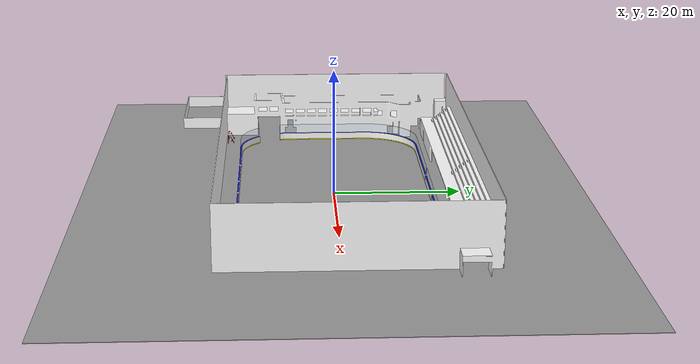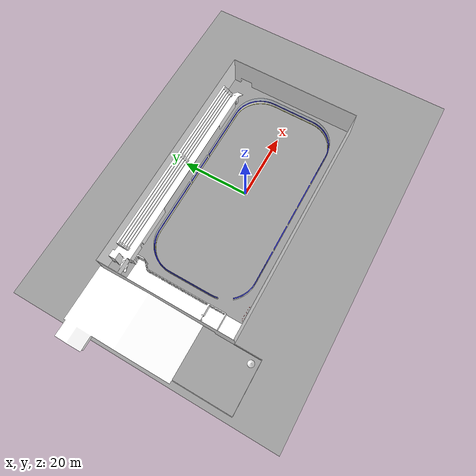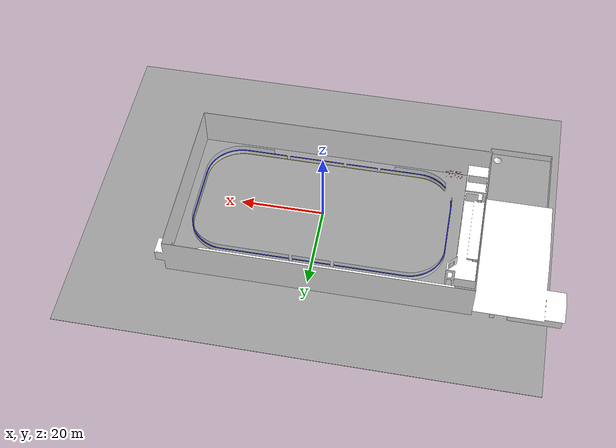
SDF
<?xml version="1.0" ?>
<sdf version="1.8">
  <world name="ice_rink">

    <scene>
      <grid>false</grid>
    </scene>

    <physics name="1ms" type="ignored">
      <max_step_size>0.01</max_step_size>
      <real_time_factor>1.0</real_time_factor>
    </physics>

    <plugin
      filename="gz-sim-physics-system"
      name="gz::sim::systems::Physics">
    </plugin>
    <plugin
      filename="gz-sim-user-commands-system"
      name="gz::sim::systems::UserCommands">
    </plugin>
    <plugin
      filename="gz-sim-scene-broadcaster-system"
      name="gz::sim::systems::SceneBroadcaster">
    </plugin>

    <plugin filename="libgz-sim-imu-system.so" name="gz::sim::systems::Imu"/>

    <plugin filename="libgz-sim-sensors-system.so" name="gz::sim::systems::Sensors">
      <render_engine>ogre2</render_engine>
    </plugin>

    <light type="directional" name="sun">
      <cast_shadows>true</cast_shadows>
      <pose>0 0 10 0 0 0</pose>
      <diffuse>0.8 0.8 0.8 1</diffuse>
      <specular>0.2 0.2 0.2 1</specular>
      <attenuation>
        <range>1000</range>
        <constant>0.9</constant>
        <linear>0.01</linear>
        <quadratic>0.001</quadratic>
      </attenuation>
      <direction>-0.5 0.1 -0.9</direction>
    </light>

   <model name="ice_sheet">
      <static>true</static>
      <pose>0 0 0.001 0 0 0</pose> <link name="link">
        <collision name="collision">
          <geometry>
            <plane>
              <normal>0 0 1</normal>
              <size>60 30</size>
            </plane>
          </geometry>
          <surface>
            <friction>
              <ode>
                <mu>0.33</mu> <mu2>0.33</mu2>
              </ode>
            </friction>
          </surface>
        </collision>
        <visual name="visual">
          <geometry>
            <plane>
              <normal>0 0 1</normal>
              <size>60 30</size>
            </plane>
          </geometry>
          <material>
            <ambient>1.0 1.0 1.0 1.0</ambient>
            <diffuse>1.0 1.0 1.0 1.0</diffuse>
            <specular>0.5 0.5 0.5 1.0</specular>
            <pbr>
              <metal>
                <albedo_map>model://ice_resurfacer_gazebo/materials/textures/Hockeyrink_IIHF_ads.png</albedo_map>
                <roughness>0.1</roughness>
                <metalness>0.0</metalness>
              </metal>
            </pbr>
          </material>
        </visual>
      </link>
    </model>

    <model name="hall_concrete_floor">
      <static>true</static>
      <pose>0 0 0 0 0 0</pose> <link name="link">
        <collision name="collision">
          <geometry>
            <plane>
              <normal>0 0 1</normal>
              <size>100 80</size> </plane>
          </geometry>
          <surface>
            <friction>
              <ode>
                <mu>0.9</mu> <mu2>0.9</mu2>
              </ode>
            </friction>
          </surface>
        </collision>
        <visual name="visual">
          <geometry>
            <plane>
              <normal>0 0 1</normal>
              <size>110 80</size>
            </plane>
          </geometry>
          <material>
            <ambient>0.6 0.6 0.6 1.0</ambient>
            <diffuse>0.6 0.6 0.6 1.0</diffuse>
            <specular>0.1 0.1 0.1 1.0</specular>
          </material>
        </visual>
      </link>
    </model>

    <model name="rink_mesh">
      <static>true</static>
      <pose>0 0 0 0 0 0</pose>
      <link name="link">

        <visual name="rink_visual">
          <geometry>
            <mesh>
              <uri>model://ice_resurfacer_gazebo/meshes/boards_260622.stl</uri>
              <scale>1 1 1</scale>
            </mesh>
          </geometry>
          <material>
            <ambient>1.0 1.0 1.0 1.0</ambient>
            <diffuse>1.0 1.0 1.0 1.0</diffuse>
          </material>
        </visual>
        <collision name="rink_collision">
          <geometry>
            <mesh>
              <uri>model://ice_resurfacer_gazebo/meshes/boards_260622.stl</uri>
              <scale>1 1 1</scale>
            </mesh>
          </geometry>
        </collision>

        <visual name="utilities_visual">
          <geometry>
            <mesh>
              <uri>model://ice_resurfacer_gazebo/meshes/environment_260802.stl</uri>
              <scale>1 1 1</scale>
            </mesh>
          </geometry>
          <material>
            <ambient>1.0 1.0 1.0 1.0</ambient>
            <diffuse>1.0 1.0 1.0 1.0</diffuse>
          </material>
        </visual>
        <collision name="utilities_collision">
          <geometry>
            <mesh>
              <uri>model://ice_resurfacer_gazebo/meshes/environment_260802.stl</uri>
              <scale>1 1 1</scale>
            </mesh>
          </geometry>
        </collision>

        <visual name="board_top_visual">
          <geometry>
            <mesh>
              <uri>model://ice_resurfacer_gazebo/meshes/boardtop_260622.stl</uri>
              <scale>1 1 1</scale>
            </mesh>
          </geometry>
          <material>
            <ambient>0.1 0.1 0.8 1.0</ambient>
            <diffuse>0.1 0.1 0.8 1.0</diffuse>
          </material>
        </visual>
        <collision name="board_top_collision">
          <geometry>
            <mesh>
              <uri>model://ice_resurfacer_gazebo/meshes/boardtop_260622.stl</uri>
              <scale>1 1 1</scale>
            </mesh>
          </geometry>
        </collision>

        <visual name="board_bottom_visual">
          <geometry>
            <mesh>
              <uri>model://ice_resurfacer_gazebo/meshes/boardbottom_260622.stl</uri>
              <scale>1 1 1</scale>
            </mesh>
          </geometry>
          <material>
            <ambient>1.0 1.0 0.0 1.0</ambient>
            <diffuse>1.0 1.0 0.0 1.0</diffuse>
            <specular>0.5 0.5 0.5 1.0</specular>
          </material>
        </visual>
        <collision name="board_bottom_collision">
          <geometry>
            <mesh>
              <uri>model://ice_resurfacer_gazebo/meshes/boardbottom_260622.stl</uri>
              <scale>1 1 1</scale>
            </mesh>
          </geometry>
        </collision>

        <visual name="plexi_visual">
          <transparent>true</transparent>
          <geometry>
            <mesh>
              <uri>model://ice_resurfacer_gazebo/meshes/plexi_260622.stl</uri>
              <scale>1 1 1</scale>
            </mesh>
          </geometry>
          <material>
            <ambient>0.8 0.9 1.0 0.3</ambient>
            <diffuse>0.8 0.9 1.0 0.3</diffuse>

            <specular>0.9 0.9 0.9 0.3</specular>

            <pbr>
              <metal>
                <roughness>0.01</roughness>
                <metalness>0.0</metalness>
              </metal>
            </pbr>
          </material>
        </visual>
        <collision name="plexi_collision">
          <geometry>
            <mesh>
              <uri>model://ice_resurfacer_gazebo/meshes/plexi_260622.stl</uri>
              <scale>1 1 1</scale>
            </mesh>
          </geometry>
        </collision>

        <visual name="goal_visual">
          <geometry>
            <mesh>
              <uri>model://ice_resurfacer_gazebo/meshes/goal1_260622.stl</uri>
              <scale>1 1 1</scale>
            </mesh>
          </geometry>
          <material>
            <ambient>0.8 0.1 0.1 1.0</ambient>
            <diffuse>0.8 0.1 0.1 1.0</diffuse>
          </material>
        </visual>
        <collision name="goal_collision">
          <geometry>
            <mesh>
              <uri>model://ice_resurfacer_gazebo/meshes/goal1_260622.stl</uri>
              <scale>1 1 1</scale>
            </mesh>
          </geometry>
        </collision>

        <visual name="goal2_visual">
          <geometry>
            <mesh>
              <uri>model://ice_resurfacer_gazebo/meshes/goal2_260622.stl</uri>
              <scale>1 1 1</scale>
            </mesh>
          </geometry>
          <material>
            <ambient>0.8 0.1 0.1 1.0</ambient>
            <diffuse>0.8 0.1 0.1 1.0</diffuse>
          </material>
        </visual>
        <collision name="goal2_collision">
          <geometry>
            <mesh>
              <uri>model://ice_resurfacer_gazebo/meshes/goal2_260622.stl</uri>
              <scale>1 1 1</scale>
            </mesh>
          </geometry>
        </collision>

      </link>
    </model>
  </world>
</sdf>
